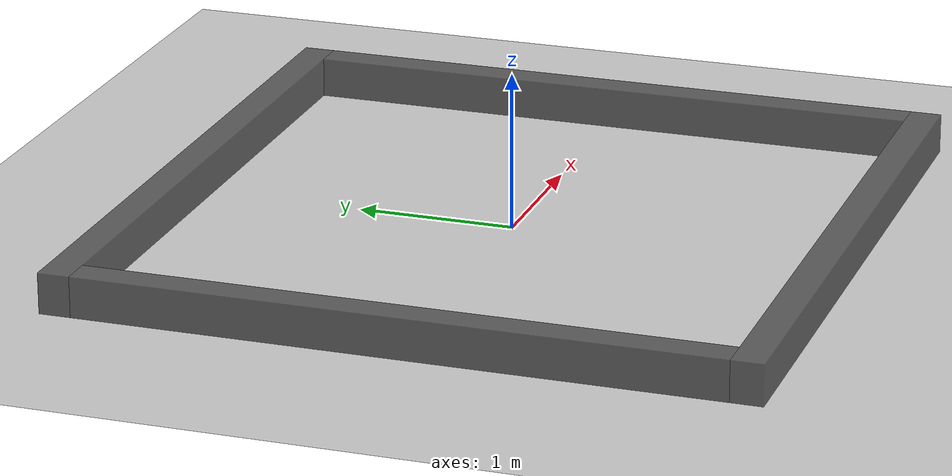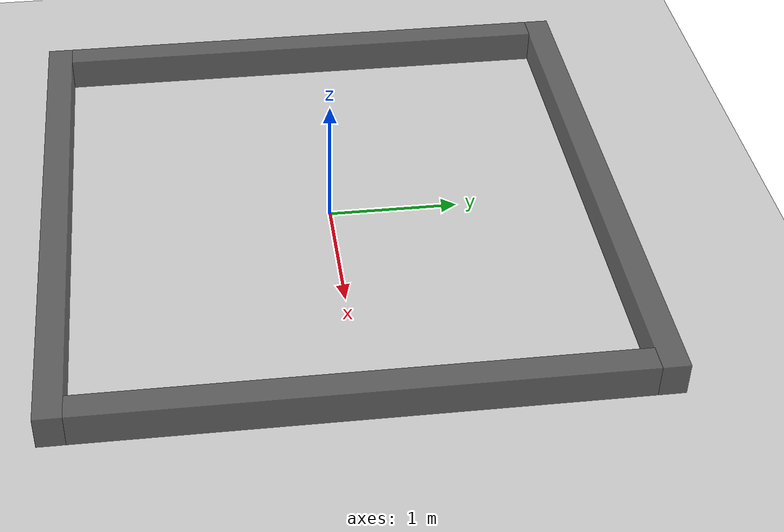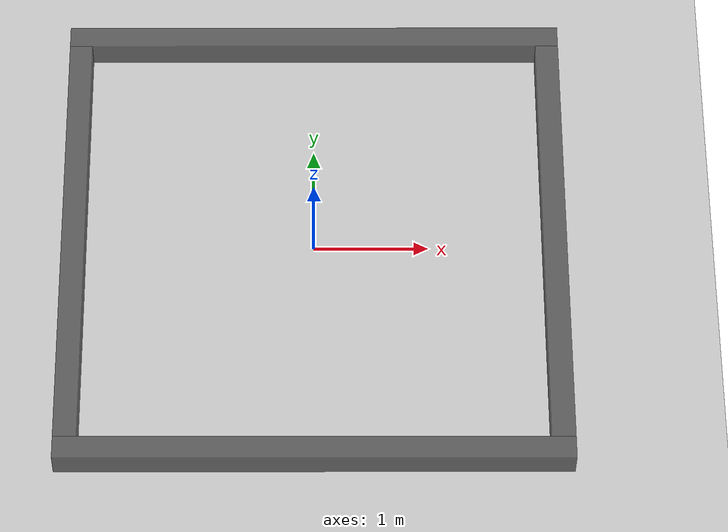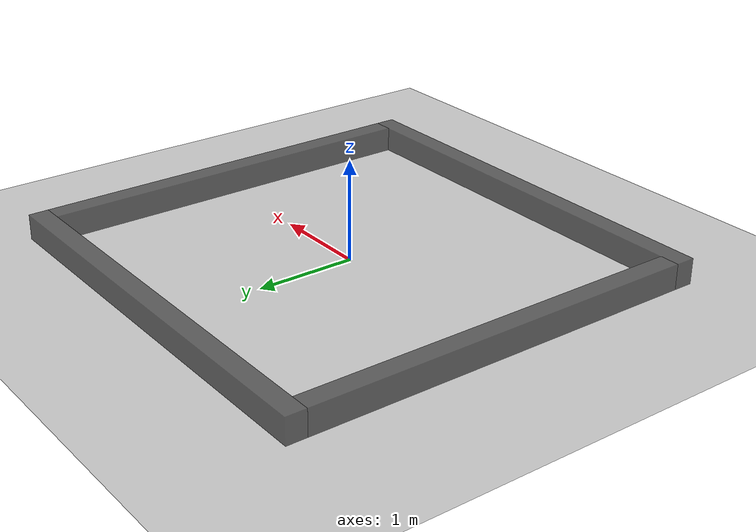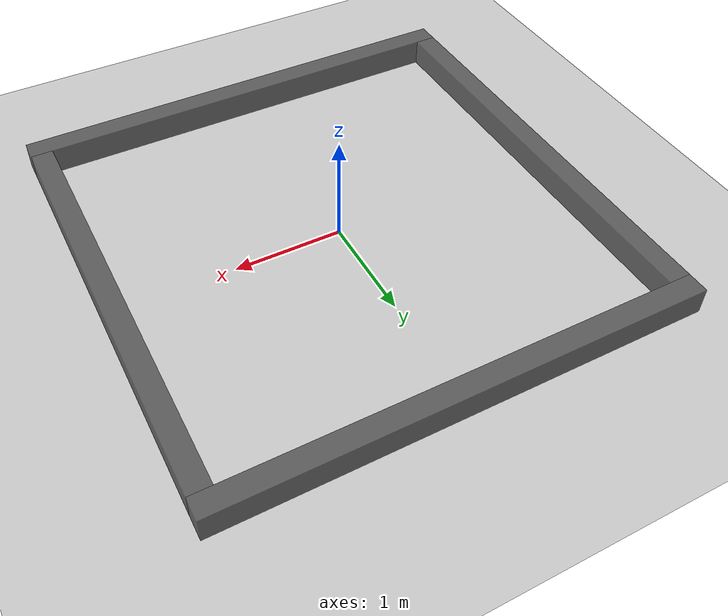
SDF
<?xml version="1.0" ?>
<sdf version="1.6">
  <world name="minimal_world">
    <include>
      <uri>model://ground_plane</uri>
    </include>
    <include>
      <uri>model://sun</uri>
    </include>

   <!-- Back Wall -->
   <model name="back_wall">
    <static>true</static>
     <pose>0 2.1 0 0 0 0</pose>
     <link name="back_wall">
       <collision name="collision">
         <geometry>
           <box>
             <size>4.4 0.2 0.5</size>
           </box>
         </geometry>
       </collision>
       <visual name="visual">
         <geometry>
           <box>
             <size>4.4 0.2 0.5</size>
           </box>
         </geometry>
         <material>
           <ambient>0.3 0.3 0.3 0.5</ambient>
           <diffuse>0.3 0.3 0.3 0.8</diffuse>
         </material>
       </visual>
     </link>
   </model>

   <!-- Front Wall -->
   <model name="front_wall">
   <static>true</static>
     <pose>0 -2.1 0 0 0 0</pose>
     <link name="front_wall">
       <collision name="collision">
         <geometry>
           <box>
             <size>4.4 0.2 0.5</size>
           </box>
         </geometry>
       </collision>
       <visual name="visual">
         <geometry>
           <box>
             <size>4.4 0.2 0.5</size>
           </box>
         </geometry>
         <material>
           <ambient>0.3 0.3 0.3 0.5</ambient>
           <diffuse>0.3 0.3 0.3 0.8</diffuse>
         </material>
       </visual>
     </link>
   </model>

   <!-- Left Wall -->
   <model name="left_wall">
   <static>true</static>
     <pose>-2.1 0 0 0 0 0</pose>
     <link name="left_wall">
       <collision name="collision">
         <geometry>
           <box>
             <size>0.2 4 0.5</size>
           </box>
         </geometry>
       </collision>
       <visual name="visual">
         <geometry>
           <box>
             <size>0.2 4 0.5</size>
           </box>
         </geometry>
         <material>
           <ambient>0.3 0.3 0.3 0.5</ambient>
           <diffuse>0.3 0.3 0.3 0.8</diffuse>
         </material>
       </visual>
     </link>
   </model>

   <!-- Right Wall -->
   <model name="right_wall">
   <static>true</static>
     <pose>2.1 0 0 0 0 0</pose>
     <link name="right_wall">
       <collision name="collision">
         <geometry>
           <box>
             <size>0.2 4 0.5</size>
           </box>
         </geometry>
       </collision>
       <visual name="visual">
         <geometry>
           <box>
             <size>0.2 4 0.5</size>
           </box>
         </geometry>
         <material>
           <ambient>0.3 0.3 0.3 0.5</ambient>
           <diffuse>0.3 0.3 0.3 0.8</diffuse>
         </material>
       </visual>
     </link>
   </model>

   <!-- Configure the camera -->
    <gui fullscreen='0'>
      <camera name='user_camera'>
        <pose>0.0 -4.225 6 0 1 1.57</pose>
        <view_controller>orbit</view_controller>
        <projection_type>perspective</projection_type>
      </camera>
    </gui>

    <plugin name="gazebo_ros_state" filename="libgazebo_ros_state.so">
      <ros>
        <namespace>/gazebo</namespace>
      </ros>

      <update_rate>1.0</update_rate>
    </plugin>

  </world>
</sdf>
